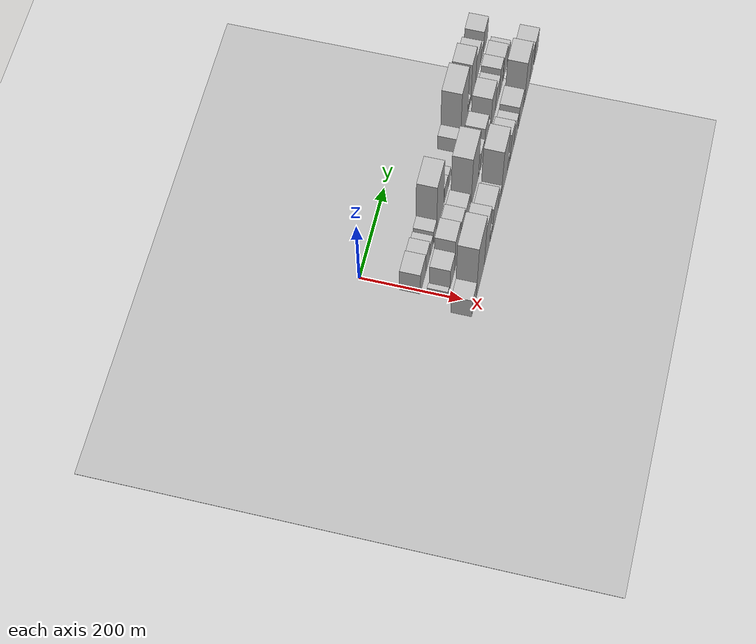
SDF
<sdf version="1.6">
 <world name="default">
  <include><name>ground_plane_1</name><uri>model://HANNAS_ground_plane</uri></include>
  <include>
   <name>ground_plane_2</name>
   <uri>model://HANNAS_ground_plane</uri>
   <pose>100 0 0  0 0 0</pose>
  </include>
  <model name="building_16">
   <static>1</static>
   <pose>100.0000 15.2583 0 0.000000 0.000000 0.000000</pose>
   <link name="link">
    <pose>0 0 37.50 0 0 0</pose>
    <collision name="collision"><geometry><box><size>40.0000 44.8660 75.0000</size></box></geometry></collision>
    <visual name="visual">
     <cast_shadows>0</cast_shadows>
     <geometry><box><size>40.0000 44.8660 75.0000</size></box></geometry>
     <material>
      <script>
       <uri>model://HANNAS_wall/materials/scripts</uri>
       <uri>model://HANNAS_wall/materials/textures</uri>
       <name>vrc/HANNAS_wall</name>
      </script>
     </material>
    </visual>
   </link>
  </model>
  <model name="building_17">
   <static>1</static>
   <pose>100.0000 55.1957 0 0.000000 0.000000 0.000000</pose>
   <link name="link">
    <pose>0 0 31.50 0 0 0</pose>
    <collision name="collision"><geometry><box><size>40.0000 35.0089 63.0000</size></box></geometry></collision>
    <visual name="visual">
     <cast_shadows>0</cast_shadows>
     <geometry><box><size>40.0000 35.0089 63.0000</size></box></geometry>
     <material>
      <script>
       <uri>model://HANNAS_wall/materials/scripts</uri>
       <uri>model://HANNAS_wall/materials/textures</uri>
       <name>vrc/HANNAS_wall</name>
      </script>
     </material>
    </visual>
   </link>
  </model>
  <model name="building_18">
   <static>1</static>
   <pose>100.0000 85.0959 0 0.000000 0.000000 0.000000</pose>
   <link name="link">
    <pose>0 0 21.00 0 0 0</pose>
    <collision name="collision"><geometry><box><size>40.0000 24.7916 42.0000</size></box></geometry></collision>
    <visual name="visual">
     <cast_shadows>0</cast_shadows>
     <geometry><box><size>40.0000 24.7916 42.0000</size></box></geometry>
     <material>
      <script>
       <uri>model://HANNAS_wall/materials/scripts</uri>
       <uri>model://HANNAS_wall/materials/textures</uri>
       <name>vrc/HANNAS_wall</name>
      </script>
     </material>
    </visual>
   </link>
  </model>
  <model name="building_19">
   <static>1</static>
   <pose>100.0000 115.1300 0 0.000000 0.000000 0.000000</pose>
   <link name="link">
    <pose>0 0 24.00 0 0 0</pose>
    <collision name="collision"><geometry><box><size>40.0000 27.2765 48.0000</size></box></geometry></collision>
    <visual name="visual">
     <cast_shadows>0</cast_shadows>
     <geometry><box><size>40.0000 27.2765 48.0000</size></box></geometry>
     <material>
      <script>
       <uri>model://HANNAS_wall/materials/scripts</uri>
       <uri>model://HANNAS_wall/materials/textures</uri>
       <name>vrc/HANNAS_wall</name>
      </script>
     </material>
    </visual>
   </link>
  </model>
  <model name="building_20">
   <static>1</static>
   <pose>100.0000 159.0901 0 0.000000 0.000000 0.000000</pose>
   <link name="link">
    <pose>0 0 84.00 0 0 0</pose>
    <collision name="collision"><geometry><box><size>40.0000 60.6438 168.0000</size></box></geometry></collision>
    <visual name="visual">
     <cast_shadows>0</cast_shadows>
     <geometry><box><size>40.0000 60.6438 168.0000</size></box></geometry>
     <material>
      <script>
       <uri>model://HANNAS_wall/materials/scripts</uri>
       <uri>model://HANNAS_wall/materials/textures</uri>
       <name>vrc/HANNAS_wall</name>
      </script>
     </material>
    </visual>
   </link>
  </model>
  <model name="building_21">
   <static>1</static>
   <pose>100.0000 209.4794 0 0.000000 0.000000 0.000000</pose>
   <link name="link">
    <pose>0 0 27.00 0 0 0</pose>
    <collision name="collision"><geometry><box><size>40.0000 32.1349 54.0000</size></box></geometry></collision>
    <visual name="visual">
     <cast_shadows>0</cast_shadows>
     <geometry><box><size>40.0000 32.1349 54.0000</size></box></geometry>
     <material>
      <script>
       <uri>model://HANNAS_wall/materials/scripts</uri>
       <uri>model://HANNAS_wall/materials/textures</uri>
       <name>vrc/HANNAS_wall</name>
      </script>
     </material>
    </visual>
   </link>
  </model>
  <model name="building_22">
   <static>1</static>
   <pose>100.0000 237.7164 0 0.000000 0.000000 0.000000</pose>
   <link name="link">
    <pose>0 0 22.50 0 0 0</pose>
    <collision name="collision"><geometry><box><size>40.0000 24.3390 45.0000</size></box></geometry></collision>
    <visual name="visual">
     <cast_shadows>0</cast_shadows>
     <geometry><box><size>40.0000 24.3390 45.0000</size></box></geometry>
     <material>
      <script>
       <uri>model://HANNAS_wall/materials/scripts</uri>
       <uri>model://HANNAS_wall/materials/textures</uri>
       <name>vrc/HANNAS_wall</name>
      </script>
     </material>
    </visual>
   </link>
  </model>
  <model name="building_23">
   <static>1</static>
   <pose>100.0000 323.4313 0 0.000000 0.000000 0.000000</pose>
   <link name="link">
    <pose>0 0 24.00 0 0 0</pose>
    <collision name="collision"><geometry><box><size>40.0000 27.0303 48.0000</size></box></geometry></collision>
    <visual name="visual">
     <cast_shadows>0</cast_shadows>
     <geometry><box><size>40.0000 27.0303 48.0000</size></box></geometry>
     <material>
      <script>
       <uri>model://HANNAS_wall/materials/scripts</uri>
       <uri>model://HANNAS_wall/materials/textures</uri>
       <name>vrc/HANNAS_wall</name>
      </script>
     </material>
    </visual>
   </link>
  </model>
  <model name="building_24">
   <static>1</static>
   <pose>100.0000 369.1194 0 0.000000 0.000000 0.000000</pose>
   <link name="link">
    <pose>0 0 84.00 0 0 0</pose>
    <collision name="collision"><geometry><box><size>40.0000 64.3458 168.0000</size></box></geometry></collision>
    <visual name="visual">
     <cast_shadows>0</cast_shadows>
     <geometry><box><size>40.0000 64.3458 168.0000</size></box></geometry>
     <material>
      <script>
       <uri>model://HANNAS_wall/materials/scripts</uri>
       <uri>model://HANNAS_wall/materials/textures</uri>
       <name>vrc/HANNAS_wall</name>
      </script>
     </material>
    </visual>
   </link>
  </model>
  <model name="building_25">
   <static>1</static>
   <pose>100.0000 411.7734 0 0.000000 0.000000 0.000000</pose>
   <link name="link">
    <pose>0 0 13.50 0 0 0</pose>
    <collision name="collision"><geometry><box><size>40.0000 10.9621 27.0000</size></box></geometry></collision>
    <visual name="visual">
     <cast_shadows>0</cast_shadows>
     <geometry><box><size>40.0000 10.9621 27.0000</size></box></geometry>
     <material>
      <script>
       <uri>model://HANNAS_wall/materials/scripts</uri>
       <uri>model://HANNAS_wall/materials/textures</uri>
       <name>vrc/HANNAS_wall</name>
      </script>
     </material>
    </visual>
   </link>
  </model>
  <model name="building_26">
   <static>1</static>
   <pose>100.0000 423.9517 0 0.000000 0.000000 0.000000</pose>
   <link name="link">
    <pose>0 0 13.50 0 0 0</pose>
    <collision name="collision"><geometry><box><size>40.0000 13.3947 27.0000</size></box></geometry></collision>
    <visual name="visual">
     <cast_shadows>0</cast_shadows>
     <geometry><box><size>40.0000 13.3947 27.0000</size></box></geometry>
     <material>
      <script>
       <uri>model://HANNAS_wall/materials/scripts</uri>
       <uri>model://HANNAS_wall/materials/textures</uri>
       <name>vrc/HANNAS_wall</name>
      </script>
     </material>
    </visual>
   </link>
  </model>
  <model name="building_27">
   <static>1</static>
   <pose>100.0000 452.7484 0 0.000000 0.000000 0.000000</pose>
   <link name="link">
    <pose>0 0 64.50 0 0 0</pose>
    <collision name="collision"><geometry><box><size>40.0000 44.1987 129.0000</size></box></geometry></collision>
    <visual name="visual">
     <cast_shadows>0</cast_shadows>
     <geometry><box><size>40.0000 44.1987 129.0000</size></box></geometry>
     <material>
      <script>
       <uri>model://HANNAS_wall/materials/scripts</uri>
       <uri>model://HANNAS_wall/materials/textures</uri>
       <name>vrc/HANNAS_wall</name>
      </script>
     </material>
    </visual>
   </link>
  </model>
  <model name="building_28">
   <static>1</static>
   <pose>100.0000 498.0288 0 0.000000 0.000000 0.000000</pose>
   <link name="link">
    <pose>0 0 42.00 0 0 0</pose>
    <collision name="collision"><geometry><box><size>40.0000 46.3619 84.0000</size></box></geometry></collision>
    <visual name="visual">
     <cast_shadows>0</cast_shadows>
     <geometry><box><size>40.0000 46.3619 84.0000</size></box></geometry>
     <material>
      <script>
       <uri>model://HANNAS_wall/materials/scripts</uri>
       <uri>model://HANNAS_wall/materials/textures</uri>
       <name>vrc/HANNAS_wall</name>
      </script>
     </material>
    </visual>
   </link>
  </model>
  <model name="building_29">
   <static>1</static>
   <pose>100.0000 534.4678 0 0.000000 0.000000 0.000000</pose>
   <link name="link">
    <pose>0 0 22.50 0 0 0</pose>
    <collision name="collision"><geometry><box><size>40.0000 26.5162 45.0000</size></box></geometry></collision>
    <visual name="visual">
     <cast_shadows>0</cast_shadows>
     <geometry><box><size>40.0000 26.5162 45.0000</size></box></geometry>
     <material>
      <script>
       <uri>model://HANNAS_wall/materials/scripts</uri>
       <uri>model://HANNAS_wall/materials/textures</uri>
       <name>vrc/HANNAS_wall</name>
      </script>
     </material>
    </visual>
   </link>
  </model>
  <model name="building_30">
   <static>1</static>
   <pose>100.0000 567.3523 0 0.000000 0.000000 0.000000</pose>
   <link name="link">
    <pose>0 0 37.50 0 0 0</pose>
    <collision name="collision"><geometry><box><size>40.0000 39.2528 75.0000</size></box></geometry></collision>
    <visual name="visual">
     <cast_shadows>0</cast_shadows>
     <geometry><box><size>40.0000 39.2528 75.0000</size></box></geometry>
     <material>
      <script>
       <uri>model://HANNAS_wall/materials/scripts</uri>
       <uri>model://HANNAS_wall/materials/textures</uri>
       <name>vrc/HANNAS_wall</name>
      </script>
     </material>
    </visual>
   </link>
  </model>
  <model name="building_46">
   <static>1</static>
   <pose>152.0000 2.1023 0 0.000000 0.000000 0.000000</pose>
   <link name="link">
    <pose>0 0 12.00 0 0 0</pose>
    <collision name="collision"><geometry><box><size>40.0000 11.1633 24.0000</size></box></geometry></collision>
    <visual name="visual">
     <cast_shadows>0</cast_shadows>
     <geometry><box><size>40.0000 11.1633 24.0000</size></box></geometry>
     <material>
      <script>
       <uri>model://HANNAS_wall/materials/scripts</uri>
       <uri>model://HANNAS_wall/materials/textures</uri>
       <name>vrc/HANNAS_wall</name>
      </script>
     </material>
    </visual>
   </link>
  </model>
  <model name="building_47">
   <static>1</static>
   <pose>152.0000 34.5308 0 0.000000 0.000000 0.000000</pose>
   <link name="link">
    <pose>0 0 37.50 0 0 0</pose>
    <collision name="collision"><geometry><box><size>40.0000 39.6936 75.0000</size></box></geometry></collision>
    <visual name="visual">
     <cast_shadows>0</cast_shadows>
     <geometry><box><size>40.0000 39.6936 75.0000</size></box></geometry>
     <material>
      <script>
       <uri>model://HANNAS_wall/materials/scripts</uri>
       <uri>model://HANNAS_wall/materials/textures</uri>
       <name>vrc/HANNAS_wall</name>
      </script>
     </material>
    </visual>
   </link>
  </model>
  <model name="building_48">
   <static>1</static>
   <pose>152.0000 76.0348 0 0.000000 0.000000 0.000000</pose>
   <link name="link">
    <pose>0 0 58.50 0 0 0</pose>
    <collision name="collision"><geometry><box><size>40.0000 43.3143 117.0000</size></box></geometry></collision>
    <visual name="visual">
     <cast_shadows>0</cast_shadows>
     <geometry><box><size>40.0000 43.3143 117.0000</size></box></geometry>
     <material>
      <script>
       <uri>model://HANNAS_wall/materials/scripts</uri>
       <uri>model://HANNAS_wall/materials/textures</uri>
       <name>vrc/HANNAS_wall</name>
      </script>
     </material>
    </visual>
   </link>
  </model>
  <model name="building_49">
   <static>1</static>
   <pose>152.0000 102.7331 0 0.000000 0.000000 0.000000</pose>
   <link name="link">
    <pose>0 0 10.50 0 0 0</pose>
    <collision name="collision"><geometry><box><size>40.0000 10.0823 21.0000</size></box></geometry></collision>
    <visual name="visual">
     <cast_shadows>0</cast_shadows>
     <geometry><box><size>40.0000 10.0823 21.0000</size></box></geometry>
     <material>
      <script>
       <uri>model://HANNAS_wall/materials/scripts</uri>
       <uri>model://HANNAS_wall/materials/textures</uri>
       <name>vrc/HANNAS_wall</name>
      </script>
     </material>
    </visual>
   </link>
  </model>
  <model name="building_50">
   <static>1</static>
   <pose>152.0000 123.5768 0 0.000000 0.000000 0.000000</pose>
   <link name="link">
    <pose>0 0 48.00 0 0 0</pose>
    <collision name="collision"><geometry><box><size>40.0000 31.6051 96.0000</size></box></geometry></collision>
    <visual name="visual">
     <cast_shadows>0</cast_shadows>
     <geometry><box><size>40.0000 31.6051 96.0000</size></box></geometry>
     <material>
      <script>
       <uri>model://HANNAS_wall/materials/scripts</uri>
       <uri>model://HANNAS_wall/materials/textures</uri>
       <name>vrc/HANNAS_wall</name>
      </script>
     </material>
    </visual>
   </link>
  </model>
  <model name="building_51">
   <static>1</static>
   <pose>152.0000 161.2680 0 0.000000 0.000000 0.000000</pose>
   <link name="link">
    <pose>0 0 37.50 0 0 0</pose>
    <collision name="collision"><geometry><box><size>40.0000 43.7773 75.0000</size></box></geometry></collision>
    <visual name="visual">
     <cast_shadows>0</cast_shadows>
     <geometry><box><size>40.0000 43.7773 75.0000</size></box></geometry>
     <material>
      <script>
       <uri>model://HANNAS_wall/materials/scripts</uri>
       <uri>model://HANNAS_wall/materials/textures</uri>
       <name>vrc/HANNAS_wall</name>
      </script>
     </material>
    </visual>
   </link>
  </model>
  <model name="building_52">
   <static>1</static>
   <pose>152.0000 193.4115 0 0.000000 0.000000 0.000000</pose>
   <link name="link">
    <pose>0 0 7.50 0 0 0</pose>
    <collision name="collision"><geometry><box><size>40.0000 6.5098 15.0000</size></box></geometry></collision>
    <visual name="visual">
     <cast_shadows>0</cast_shadows>
     <geometry><box><size>40.0000 6.5098 15.0000</size></box></geometry>
     <material>
      <script>
       <uri>model://HANNAS_wall/materials/scripts</uri>
       <uri>model://HANNAS_wall/materials/textures</uri>
       <name>vrc/HANNAS_wall</name>
      </script>
     </material>
    </visual>
   </link>
  </model>
  <model name="building_53">
   <static>1</static>
   <pose>152.0000 229.8781 0 0.000000 0.000000 0.000000</pose>
   <link name="link">
    <pose>0 0 88.50 0 0 0</pose>
    <collision name="collision"><geometry><box><size>40.0000 66.4234 177.0000</size></box></geometry></collision>
    <visual name="visual">
     <cast_shadows>0</cast_shadows>
     <geometry><box><size>40.0000 66.4234 177.0000</size></box></geometry>
     <material>
      <script>
       <uri>model://HANNAS_wall/materials/scripts</uri>
       <uri>model://HANNAS_wall/materials/textures</uri>
       <name>vrc/HANNAS_wall</name>
      </script>
     </material>
    </visual>
   </link>
  </model>
  <model name="building_54">
   <static>1</static>
   <pose>152.0000 269.5654 0 0.000000 0.000000 0.000000</pose>
   <link name="link">
    <pose>0 0 7.50 0 0 0</pose>
    <collision name="collision"><geometry><box><size>40.0000 6.9513 15.0000</size></box></geometry></collision>
    <visual name="visual">
     <cast_shadows>0</cast_shadows>
     <geometry><box><size>40.0000 6.9513 15.0000</size></box></geometry>
     <material>
      <script>
       <uri>model://HANNAS_wall/materials/scripts</uri>
       <uri>model://HANNAS_wall/materials/textures</uri>
       <name>vrc/HANNAS_wall</name>
      </script>
     </material>
    </visual>
   </link>
  </model>
  <model name="building_55">
   <static>1</static>
   <pose>152.0000 297.1355 0 0.000000 0.000000 0.000000</pose>
   <link name="link">
    <pose>0 0 31.50 0 0 0</pose>
    <collision name="collision"><geometry><box><size>40.0000 34.1889 63.0000</size></box></geometry></collision>
    <visual name="visual">
     <cast_shadows>0</cast_shadows>
     <geometry><box><size>40.0000 34.1889 63.0000</size></box></geometry>
     <material>
      <script>
       <uri>model://HANNAS_wall/materials/scripts</uri>
       <uri>model://HANNAS_wall/materials/textures</uri>
       <name>vrc/HANNAS_wall</name>
      </script>
     </material>
    </visual>
   </link>
  </model>
  <model name="building_56">
   <static>1</static>
   <pose>152.0000 330.9647 0 0.000000 0.000000 0.000000</pose>
   <link name="link">
    <pose>0 0 49.50 0 0 0</pose>
    <collision name="collision"><geometry><box><size>40.0000 33.4693 99.0000</size></box></geometry></collision>
    <visual name="visual">
     <cast_shadows>0</cast_shadows>
     <geometry><box><size>40.0000 33.4693 99.0000</size></box></geometry>
     <material>
      <script>
       <uri>model://HANNAS_wall/materials/scripts</uri>
       <uri>model://HANNAS_wall/materials/textures</uri>
       <name>vrc/HANNAS_wall</name>
      </script>
     </material>
    </visual>
   </link>
  </model>
  <model name="building_57">
   <static>1</static>
   <pose>152.0000 359.9088 0 0.000000 0.000000 0.000000</pose>
   <link name="link">
    <pose>0 0 22.50 0 0 0</pose>
    <collision name="collision"><geometry><box><size>40.0000 24.4189 45.0000</size></box></geometry></collision>
    <visual name="visual">
     <cast_shadows>0</cast_shadows>
     <geometry><box><size>40.0000 24.4189 45.0000</size></box></geometry>
     <material>
      <script>
       <uri>model://HANNAS_wall/materials/scripts</uri>
       <uri>model://HANNAS_wall/materials/textures</uri>
       <name>vrc/HANNAS_wall</name>
      </script>
     </material>
    </visual>
   </link>
  </model>
  <model name="building_58">
   <static>1</static>
   <pose>152.0000 397.0933 0 0.000000 0.000000 0.000000</pose>
   <link name="link">
    <pose>0 0 55.50 0 0 0</pose>
    <collision name="collision"><geometry><box><size>40.0000 43.9501 111.0000</size></box></geometry></collision>
    <visual name="visual">
     <cast_shadows>0</cast_shadows>
     <geometry><box><size>40.0000 43.9501 111.0000</size></box></geometry>
     <material>
      <script>
       <uri>model://HANNAS_wall/materials/scripts</uri>
       <uri>model://HANNAS_wall/materials/textures</uri>
       <name>vrc/HANNAS_wall</name>
      </script>
     </material>
    </visual>
   </link>
  </model>
  <model name="building_59">
   <static>1</static>
   <pose>152.0000 438.5188 0 0.000000 0.000000 0.000000</pose>
   <link name="link">
    <pose>0 0 36.00 0 0 0</pose>
    <collision name="collision"><geometry><box><size>40.0000 38.9008 72.0000</size></box></geometry></collision>
    <visual name="visual">
     <cast_shadows>0</cast_shadows>
     <geometry><box><size>40.0000 38.9008 72.0000</size></box></geometry>
     <material>
      <script>
       <uri>model://HANNAS_wall/materials/scripts</uri>
       <uri>model://HANNAS_wall/materials/textures</uri>
       <name>vrc/HANNAS_wall</name>
      </script>
     </material>
    </visual>
   </link>
  </model>
  <model name="building_60">
   <static>1</static>
   <pose>152.0000 472.1805 0 0.000000 0.000000 0.000000</pose>
   <link name="link">
    <pose>0 0 46.50 0 0 0</pose>
    <collision name="collision"><geometry><box><size>40.0000 28.4227 93.0000</size></box></geometry></collision>
    <visual name="visual">
     <cast_shadows>0</cast_shadows>
     <geometry><box><size>40.0000 28.4227 93.0000</size></box></geometry>
     <material>
      <script>
       <uri>model://HANNAS_wall/materials/scripts</uri>
       <uri>model://HANNAS_wall/materials/textures</uri>
       <name>vrc/HANNAS_wall</name>
      </script>
     </material>
    </visual>
   </link>
  </model>
  <model name="building_61">
   <static>1</static>
   <pose>152.0000 511.7645 0 0.000000 0.000000 0.000000</pose>
   <link name="link">
    <pose>0 0 37.50 0 0 0</pose>
    <collision name="collision"><geometry><box><size>40.0000 40.7452 75.0000</size></box></geometry></collision>
    <visual name="visual">
     <cast_shadows>0</cast_shadows>
     <geometry><box><size>40.0000 40.7452 75.0000</size></box></geometry>
     <material>
      <script>
       <uri>model://HANNAS_wall/materials/scripts</uri>
       <uri>model://HANNAS_wall/materials/textures</uri>
       <name>vrc/HANNAS_wall</name>
      </script>
     </material>
    </visual>
   </link>
  </model>
  <model name="building_62">
   <static>1</static>
   <pose>152.0000 546.0164 0 0.000000 0.000000 0.000000</pose>
   <link name="link">
    <pose>0 0 24.00 0 0 0</pose>
    <collision name="collision"><geometry><box><size>40.0000 27.7586 48.0000</size></box></geometry></collision>
    <visual name="visual">
     <cast_shadows>0</cast_shadows>
     <geometry><box><size>40.0000 27.7586 48.0000</size></box></geometry>
     <material>
      <script>
       <uri>model://HANNAS_wall/materials/scripts</uri>
       <uri>model://HANNAS_wall/materials/textures</uri>
       <name>vrc/HANNAS_wall</name>
      </script>
     </material>
    </visual>
   </link>
  </model>
  <model name="building_81">
   <static>1</static>
   <pose>204.0000 -12.0352 0 0.000000 0.000000 0.000000</pose>
   <link name="link">
    <pose>0 0 33.00 0 0 0</pose>
    <collision name="collision"><geometry><box><size>40.0000 38.4797 66.0000</size></box></geometry></collision>
    <visual name="visual">
     <cast_shadows>0</cast_shadows>
     <geometry><box><size>40.0000 38.4797 66.0000</size></box></geometry>
     <material>
      <script>
       <uri>model://HANNAS_wall/materials/scripts</uri>
       <uri>model://HANNAS_wall/materials/textures</uri>
       <name>vrc/HANNAS_wall</name>
      </script>
     </material>
    </visual>
   </link>
  </model>
  <model name="building_82">
   <static>1</static>
   <pose>204.0000 42.6563 0 0.000000 0.000000 0.000000</pose>
   <link name="link">
    <pose>0 0 97.50 0 0 0</pose>
    <collision name="collision"><geometry><box><size>40.0000 70.9034 195.0000</size></box></geometry></collision>
    <visual name="visual">
     <cast_shadows>0</cast_shadows>
     <geometry><box><size>40.0000 70.9034 195.0000</size></box></geometry>
     <material>
      <script>
       <uri>model://HANNAS_wall/materials/scripts</uri>
       <uri>model://HANNAS_wall/materials/textures</uri>
       <name>vrc/HANNAS_wall</name>
      </script>
     </material>
    </visual>
   </link>
  </model>
  <model name="building_83">
   <static>1</static>
   <pose>204.0000 101.9521 0 0.000000 0.000000 0.000000</pose>
   <link name="link">
    <pose>0 0 73.50 0 0 0</pose>
    <collision name="collision"><geometry><box><size>40.0000 47.6880 147.0000</size></box></geometry></collision>
    <visual name="visual">
     <cast_shadows>0</cast_shadows>
     <geometry><box><size>40.0000 47.6880 147.0000</size></box></geometry>
     <material>
      <script>
       <uri>model://HANNAS_wall/materials/scripts</uri>
       <uri>model://HANNAS_wall/materials/textures</uri>
       <name>vrc/HANNAS_wall</name>
      </script>
     </material>
    </visual>
   </link>
  </model>
  <model name="building_84">
   <static>1</static>
   <pose>204.0000 140.5550 0 0.000000 0.000000 0.000000</pose>
   <link name="link">
    <pose>0 0 18.00 0 0 0</pose>
    <collision name="collision"><geometry><box><size>40.0000 21.5179 36.0000</size></box></geometry></collision>
    <visual name="visual">
     <cast_shadows>0</cast_shadows>
     <geometry><box><size>40.0000 21.5179 36.0000</size></box></geometry>
     <material>
      <script>
       <uri>model://HANNAS_wall/materials/scripts</uri>
       <uri>model://HANNAS_wall/materials/textures</uri>
       <name>vrc/HANNAS_wall</name>
      </script>
     </material>
    </visual>
   </link>
  </model>
  <model name="building_85">
   <static>1</static>
   <pose>204.0000 176.7518 0 0.000000 0.000000 0.000000</pose>
   <link name="link">
    <pose>0 0 45.00 0 0 0</pose>
    <collision name="collision"><geometry><box><size>40.0000 50.8758 90.0000</size></box></geometry></collision>
    <visual name="visual">
     <cast_shadows>0</cast_shadows>
     <geometry><box><size>40.0000 50.8758 90.0000</size></box></geometry>
     <material>
      <script>
       <uri>model://HANNAS_wall/materials/scripts</uri>
       <uri>model://HANNAS_wall/materials/textures</uri>
       <name>vrc/HANNAS_wall</name>
      </script>
     </material>
    </visual>
   </link>
  </model>
  <model name="building_86">
   <static>1</static>
   <pose>204.0000 216.4334 0 0.000000 0.000000 0.000000</pose>
   <link name="link">
    <pose>0 0 24.00 0 0 0</pose>
    <collision name="collision"><geometry><box><size>40.0000 28.4873 48.0000</size></box></geometry></collision>
    <visual name="visual">
     <cast_shadows>0</cast_shadows>
     <geometry><box><size>40.0000 28.4873 48.0000</size></box></geometry>
     <material>
      <script>
       <uri>model://HANNAS_wall/materials/scripts</uri>
       <uri>model://HANNAS_wall/materials/textures</uri>
       <name>vrc/HANNAS_wall</name>
      </script>
     </material>
    </visual>
   </link>
  </model>
  <model name="building_87">
   <static>1</static>
   <pose>204.0000 258.8152 0 0.000000 0.000000 0.000000</pose>
   <link name="link">
    <pose>0 0 84.00 0 0 0</pose>
    <collision name="collision"><geometry><box><size>40.0000 56.2763 168.0000</size></box></geometry></collision>
    <visual name="visual">
     <cast_shadows>0</cast_shadows>
     <geometry><box><size>40.0000 56.2763 168.0000</size></box></geometry>
     <material>
      <script>
       <uri>model://HANNAS_wall/materials/scripts</uri>
       <uri>model://HANNAS_wall/materials/textures</uri>
       <name>vrc/HANNAS_wall</name>
      </script>
     </material>
    </visual>
   </link>
  </model>
  <model name="building_88">
   <static>1</static>
   <pose>204.0000 298.2137 0 0.000000 0.000000 0.000000</pose>
   <link name="link">
    <pose>0 0 21.00 0 0 0</pose>
    <collision name="collision"><geometry><box><size>40.0000 22.5209 42.0000</size></box></geometry></collision>
    <visual name="visual">
     <cast_shadows>0</cast_shadows>
     <geometry><box><size>40.0000 22.5209 42.0000</size></box></geometry>
     <material>
      <script>
       <uri>model://HANNAS_wall/materials/scripts</uri>
       <uri>model://HANNAS_wall/materials/textures</uri>
       <name>vrc/HANNAS_wall</name>
      </script>
     </material>
    </visual>
   </link>
  </model>
  <model name="building_89">
   <static>1</static>
   <pose>204.0000 329.6297 0 0.000000 0.000000 0.000000</pose>
   <link name="link">
    <pose>0 0 49.50 0 0 0</pose>
    <collision name="collision"><geometry><box><size>40.0000 34.3109 99.0000</size></box></geometry></collision>
    <visual name="visual">
     <cast_shadows>0</cast_shadows>
     <geometry><box><size>40.0000 34.3109 99.0000</size></box></geometry>
     <material>
      <script>
       <uri>model://HANNAS_wall/materials/scripts</uri>
       <uri>model://HANNAS_wall/materials/textures</uri>
       <name>vrc/HANNAS_wall</name>
      </script>
     </material>
    </visual>
   </link>
  </model>
  <model name="building_90">
   <static>1</static>
   <pose>204.0000 365.6110 0 0.000000 0.000000 0.000000</pose>
   <link name="link">
    <pose>0 0 33.00 0 0 0</pose>
    <collision name="collision"><geometry><box><size>40.0000 37.6518 66.0000</size></box></geometry></collision>
    <visual name="visual">
     <cast_shadows>0</cast_shadows>
     <geometry><box><size>40.0000 37.6518 66.0000</size></box></geometry>
     <material>
      <script>
       <uri>model://HANNAS_wall/materials/scripts</uri>
       <uri>model://HANNAS_wall/materials/textures</uri>
       <name>vrc/HANNAS_wall</name>
      </script>
     </material>
    </visual>
   </link>
  </model>
  <model name="building_91">
   <static>1</static>
   <pose>204.0000 413.6156 0 0.000000 0.000000 0.000000</pose>
   <link name="link">
    <pose>0 0 37.50 0 0 0</pose>
    <collision name="collision"><geometry><box><size>40.0000 44.3574 75.0000</size></box></geometry></collision>
    <visual name="visual">
     <cast_shadows>0</cast_shadows>
     <geometry><box><size>40.0000 44.3574 75.0000</size></box></geometry>
     <material>
      <script>
       <uri>model://HANNAS_wall/materials/scripts</uri>
       <uri>model://HANNAS_wall/materials/textures</uri>
       <name>vrc/HANNAS_wall</name>
      </script>
     </material>
    </visual>
   </link>
  </model>
  <model name="building_92">
   <static>1</static>
   <pose>204.0000 443.6152 0 0.000000 0.000000 0.000000</pose>
   <link name="link">
    <pose>0 0 15.00 0 0 0</pose>
    <collision name="collision"><geometry><box><size>40.0000 15.6418 30.0000</size></box></geometry></collision>
    <visual name="visual">
     <cast_shadows>0</cast_shadows>
     <geometry><box><size>40.0000 15.6418 30.0000</size></box></geometry>
     <material>
      <script>
       <uri>model://HANNAS_wall/materials/scripts</uri>
       <uri>model://HANNAS_wall/materials/textures</uri>
       <name>vrc/HANNAS_wall</name>
      </script>
     </material>
    </visual>
   </link>
  </model>
  <model name="building_93">
   <static>1</static>
   <pose>204.0000 477.2089 0 0.000000 0.000000 0.000000</pose>
   <link name="link">
    <pose>0 0 70.50 0 0 0</pose>
    <collision name="collision"><geometry><box><size>40.0000 51.5456 141.0000</size></box></geometry></collision>
    <visual name="visual">
     <cast_shadows>0</cast_shadows>
     <geometry><box><size>40.0000 51.5456 141.0000</size></box></geometry>
     <material>
      <script>
       <uri>model://HANNAS_wall/materials/scripts</uri>
       <uri>model://HANNAS_wall/materials/textures</uri>
       <name>vrc/HANNAS_wall</name>
      </script>
     </material>
    </visual>
   </link>
  </model>
  <model name="building_94">
   <static>1</static>
   <pose>204.0000 519.4902 0 0.000000 0.000000 0.000000</pose>
   <link name="link">
    <pose>0 0 46.50 0 0 0</pose>
    <collision name="collision"><geometry><box><size>40.0000 33.0170 93.0000</size></box></geometry></collision>
    <visual name="visual">
     <cast_shadows>0</cast_shadows>
     <geometry><box><size>40.0000 33.0170 93.0000</size></box></geometry>
     <material>
      <script>
       <uri>model://HANNAS_wall/materials/scripts</uri>
       <uri>model://HANNAS_wall/materials/textures</uri>
       <name>vrc/HANNAS_wall</name>
      </script>
     </material>
    </visual>
   </link>
  </model>
  <model name="building_95">
   <static>1</static>
   <pose>204.0000 564.1491 0 0.000000 0.000000 0.000000</pose>
   <link name="link">
    <pose>0 0 37.50 0 0 0</pose>
    <collision name="collision"><geometry><box><size>40.0000 38.3007 75.0000</size></box></geometry></collision>
    <visual name="visual">
     <cast_shadows>0</cast_shadows>
     <geometry><box><size>40.0000 38.3007 75.0000</size></box></geometry>
     <material>
      <script>
       <uri>model://HANNAS_wall/materials/scripts</uri>
       <uri>model://HANNAS_wall/materials/textures</uri>
       <name>vrc/HANNAS_wall</name>
      </script>
     </material>
    </visual>
   </link>
  </model>
 </world>
</sdf>
